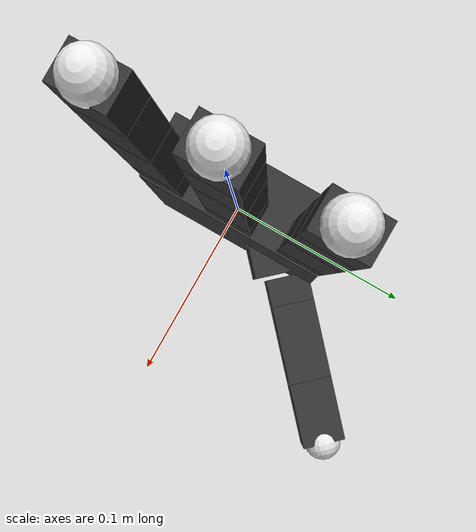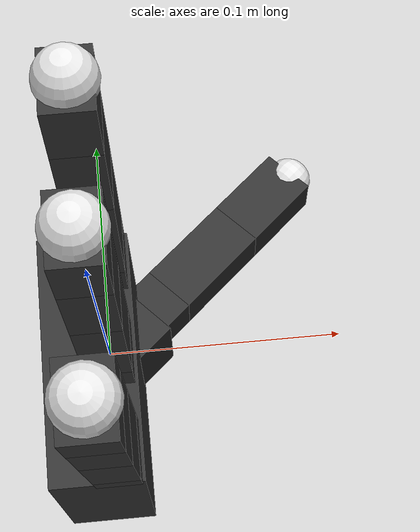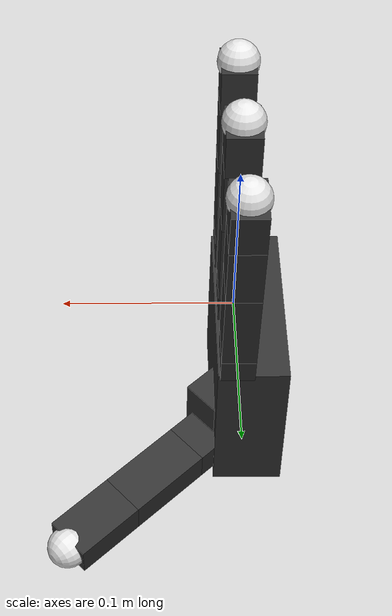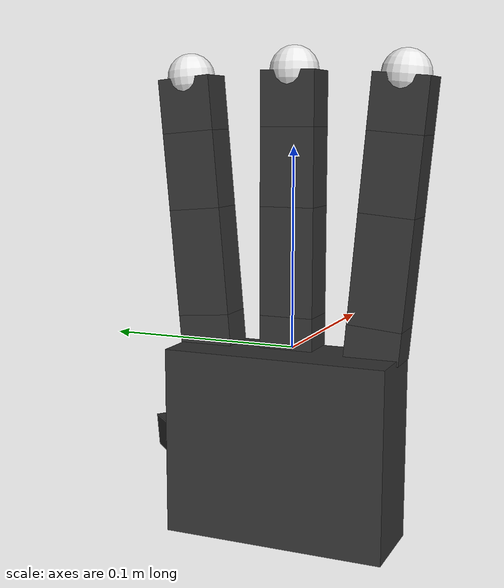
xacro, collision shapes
<?xml version="1.0"?>
<robot xmlns:xacro="http://ros.org/wiki/xacro" name="allegro_hand_right">

    <xacro:property name="DEG2RAD" value="0.01745329251"/>

    <!-- ======================== BASE PARAMS ========================= -->
    <xacro:property name="palm_link_z" value="0.095"/>

    <!-- ======================== FINGER PARAMS ======================== -->
    <xacro:property name="links_x" value="0.0196"/>
    <xacro:property name="links_y" value="0.0275"/>
    <xacro:property name="link0_z" value="0.0164"/>
    <xacro:property name="link1_z" value="0.0540"/>
    <xacro:property name="link2_z" value="0.0384"/>

    <!-- full height from joint to tip. when used,
         the radius of the finger tip sphere will be subtracted
         and one fixed link will be added for the tip. -->
    <xacro:property name="link3_z" value="0.0387"/>
    <xacro:property name="fingerTip_r" value="0.0120"/>
    <xacro:property name="offset_origin_x_const" value="0"/>
    <xacro:property name="offset_origin_y_const" value="0.0435"/>
    <xacro:property name="offset_origin_z_const" value="-0.001542"/>
    <xacro:property name="offset_origin_z_mid_const" value="0.0007"/>

    <!-- ========================= THUMB PARAMS ========================= -->
    <xacro:property name="link0_t_x" value="0.0358"/>
    <xacro:property name="link0_t_y" value="0.0340"/>
    <xacro:property name="link0_t_z" value="0.0455"/>
    <xacro:property name="link1_t_z" value="0.0177"/>
    <xacro:property name="link2_t_z" value="0.0514"/>
    <xacro:property name="link3_t_z" value="0.0543"/>

    <!-- ========================= LIMITS ========================= -->
    <xacro:property name="joint_safety_margin" value="0.1"/>
    <xacro:property name="limit_0_up" value="0.57"/>
    <xacro:property name="limit_0_low" value="-0.57"/>
    <xacro:property name="limit_1_up" value="1.71"/>
    <xacro:property name="limit_1_low" value="-0.296"/>
    <xacro:property name="limit_2_up" value="1.809"/>
    <xacro:property name="limit_2_low" value="-0.274"/>
    <xacro:property name="limit_3_up" value="1.718"/>
    <xacro:property name="limit_3_low" value=" -0.327"/>
    <xacro:property name="limit_0_t_up" value="1.496"/>
    <xacro:property name="limit_0_t_low" value="0.363"/>
    <xacro:property name="limit_1_t_up" value="1.263"/>
    <xacro:property name="limit_1_t_low" value="-0.205"/>
    <xacro:property name="limit_2_t_up" value="1.744"/>
    <xacro:property name="limit_2_t_low" value="-0.289"/>
    <xacro:property name="limit_3_t_up" value="1.819"/>
    <xacro:property name="limit_3_t_low" value="-0.262"/>

    <!-- PALM -->
    <link name="palm_link">
        <visual>
            <geometry>
                <mesh filename="package://allegro_hand_description1/meshes/base_link.STL"/>
            </geometry>
            <origin rpy="0 0 0" xyz="0 0 0 "/>
            <material name="black">
                <color rgba="0.2 0.2 0.2 1"/>
            </material>
        </visual>

        <collision>
            <origin rpy="0 0 0" xyz="-0.009300 0 -${palm_link_z/2}"/>
            <geometry>
                <box size="0.0408 0.1130 ${palm_link_z}"/>
            </geometry>
        </collision>
        <inertial>
          <origin xyz="0 0 ${palm_link_z/2}" rpy="0 0 0"/>
          <mass value="0.4154"/>
          <inertia
              ixx="1e-4" ixy="0.0" ixz="0.0"
              iyy="1e-4" iyz="0.0"
              izz="1e-4"/>
        </inertial>
    </link>

    <!-- THUMB MACRO -->
    <xacro:macro name="thumb_right"
                 params="finger_num offset_origin_x offset_origin_y offset_origin_z finger_angle_r finger_angle_p finger_angle_y">

        <!-- [LINK 12] -->
        <link name="link_${finger_num*4}_0">
            <visual>
                <geometry>
                    <mesh filename="package://allegro_hand_description1/meshes/link_12.0_right.STL"/>
                </geometry>
                <material name="black">
                    <color rgba=".2 .2 .2 1"/>
                </material>
            </visual>

            <collision>
                <geometry>
                    <box size="${link0_t_x} ${link0_t_y} ${link0_t_z}"/>
                </geometry>
                <origin rpy="0 0 0" xyz="${-0.0358/2+0.0} ${.018/2} ${.029/2}"/>
            </collision>

            <inertial>
              <mass value="0.0176" />
              <origin xyz="0 0 0" rpy="0 0 0"/>
              <inertia ixx="1.89273333333e-5" ixy="7.16716e-06" ixz="5.35568e-06"
                       iyy="1.43008213333e-05" iyz="6.8068e-06"
                       izz="1.89273333333e-05" />
            </inertial>
        </link>

        <joint name="joint_${finger_num*4}_0" type="revolute">
            <axis xyz="-1 0 0"/>
            <limit effort="15" velocity="7"
                   lower="${limit_0_t_low-joint_safety_margin}"
                   upper="${limit_0_t_up-joint_safety_margin}"/>
            <parent link="palm_link"/>
            <child link="link_${finger_num*4}_0"/>
            <origin rpy="${finger_angle_r} ${finger_angle_p} ${finger_angle_y}"
                    xyz="${offset_origin_x} ${offset_origin_y} ${offset_origin_z}"/>
            <dynamics damping="3" friction="10"/>
        </joint>
        <transmission name="tran1">
            <type>transmission_interface/SimpleTransmission</type>
            <joint name="joint_${finger_num*4}_0">
                <hardwareInterface>hardware_interface/PositionJointInterface</hardwareInterface>
            </joint>
            <actuator name="motor1">
                <hardwareInterface>hardware_interface/PositionJointInterface</hardwareInterface>
                <mechanicalReduction>1</mechanicalReduction>
            </actuator>
        </transmission>

        <!-- [LINK 13] -->
        <link name="link_${finger_num*4}_1">
            <visual>
                <geometry>
                    <mesh filename="package://allegro_hand_description1/meshes/link_13.0.STL"/>
                </geometry>
                <material name="black">
                    <color rgba=".2 .2 .2 1"/>
                </material>
            </visual>

            <collision>
                <geometry>
                    <box size="${links_x} ${links_y} ${link1_t_z}"/>
                </geometry>
                <origin rpy="0 0 0" xyz="0 0 ${link1_t_z/2}"/>
            </collision>

            <inertial>
              <mass value="0.0119" />
              <origin xyz="0 0 0" rpy="0 0 0"/>
              <inertia ixx="4.24250866667e-06" ixy="1.032087e-06" ixz="1.603525e-06"
                       iyy="4.52362633333e-06" iyz="1.44808125e-06"
                       izz="4.24250866667e-06" />
            </inertial>
        </link>

        <joint name="joint_${finger_num*4}_1" type="revolute">
            <axis xyz="0 0 1"/>
            <limit effort="15" velocity="7"
                   lower="${limit_1_t_low+joint_safety_margin}"
                   upper="${limit_1_t_up-joint_safety_margin}"/>
            <parent link="link_${finger_num*4}_0"/>
            <child link="link_${finger_num*4}_1"/>
            <origin xyz="-0.027 0.005 0.0399"/>
            <dynamics damping="3" friction="5"/>
        </joint>
        <transmission name="tran1">
            <type>transmission_interface/SimpleTransmission</type>
            <joint name="joint_${finger_num*4}_1">
                <hardwareInterface>hardware_interface/PositionJointInterface</hardwareInterface>
            </joint>
            <actuator name="motor1">
                <hardwareInterface>hardware_interface/PositionJointInterface</hardwareInterface>
                <mechanicalReduction>1</mechanicalReduction>
            </actuator>
        </transmission>

        <!-- [LINK 14] -->
        <link name="link_${finger_num*4}_2">
            <visual>
                <geometry>
                    <mesh filename="package://allegro_hand_description1/meshes/link_14.0.STL"/>
                </geometry>
                <material name="black">
                </material>
            </visual>

            <collision>
                <geometry>
                    <box size="${links_x} ${links_y} ${link2_t_z}"/>
                </geometry>
                <origin rpy="0 0 0" xyz="0 0 ${link2_t_z/2}"/>
            </collision>

            <inertial>
              <mass value="0.038" />
              <origin xyz="0 0 0" rpy="0 0 0"/>
              <inertia ixx="4.30439933333e-05" ixy="9.57068e-06" ixz="5.1205e-06" iyy="1.44451933333e-05"
                       iyz="1.342825e-05" izz="4.30439933333e-05" />
            </inertial>
        </link>

        <joint name="joint_${finger_num*4}_2" type="revolute">
            <axis xyz="0 1 0"/>
            <limit effort="15" velocity="7"
                   lower="${limit_2_t_low+joint_safety_margin}"
                   upper="${limit_2_t_up-joint_safety_margin}"/>
            <parent link="link_${finger_num*4}_1"/>
            <child link="link_${finger_num*4}_2"/>
            <origin xyz="0 0 ${link1_t_z}"/>
            <dynamics damping="3" friction="10"/>
        </joint>
        <transmission name="tran1">
            <type>transmission_interface/SimpleTransmission</type>
            <joint name="joint_${finger_num*4}_2">
                <hardwareInterface>hardware_interface/PositionJointInterface</hardwareInterface>
            </joint>
            <actuator name="motor1">
                <hardwareInterface>hardware_interface/PositionJointInterface</hardwareInterface>
                <mechanicalReduction>1</mechanicalReduction>
            </actuator>
        </transmission>

        <!-- [LINK 15] -->
        <link name="link_${finger_num*4}_3">
            <visual>
                <geometry>
                    <mesh filename="package://allegro_hand_description1/meshes/link_15.0.STL"/>
                </geometry>
                <material name="black">
                </material>
            </visual>

            <collision>
                <geometry>
                    <box size="${links_x} ${links_y} ${link3_t_z-fingerTip_r}"/>
                </geometry>
                <origin rpy="0 0 0" xyz="0 0 ${(link3_t_z-fingerTip_r)/2}"/>
            </collision>

            <inertial>
              <mass value="0.0388" />
              <origin xyz="0 0 0" rpy="0 0 0"/>
              <inertia ixx="3.29223173333e-05" ixy="8.042076e-06" ixz="5.2283e-06"
                       iyy="1.47493026667e-5" iyz="1.1283525e-5"
                       izz="3.29223173333e-05" />
            </inertial>
        </link>

        <joint name="joint_${finger_num*4}_3" type="revolute">
            <axis xyz="0 1 0"/>
            <limit effort="15" velocity="7"
                   lower="${limit_3_t_low+joint_safety_margin}"
                   upper="${limit_3_t_up-joint_safety_margin}"/>
            <parent link="link_${finger_num*4}_2"/>
            <child link="link_${finger_num*4}_3"/>
            <origin xyz="0 0 ${link2_t_z}"/>
            <dynamics damping="3" friction="12"/>
        </joint>
        <transmission name="tran1">
            <type>transmission_interface/SimpleTransmission</type>
            <joint name="joint_${finger_num*4}_3">
                <hardwareInterface>hardware_interface/PositionJointInterface</hardwareInterface>
            </joint>
            <actuator name="motor1">
                <hardwareInterface>hardware_interface/PositionJointInterface</hardwareInterface>
                <mechanicalReduction>1</mechanicalReduction>
            </actuator>
        </transmission>

        <!-- [FINGER TIP] -->
        <link name="link_${finger_num*4}_3_tip">
            <visual>
                <geometry>
                    <mesh filename="package://allegro_hand_description1/meshes/link_15.0_tip.STL"/>
                </geometry>
                <material name="white">
                    <color rgba=".9 .9 .9 1"/>
                </material>
            </visual>

            <collision>
                <geometry>
                    <sphere radius="${fingerTip_r}"/>
                </geometry>
                <origin rpy="0 0 0" xyz="0 0 0"/>
            </collision>

            <inertial>
              <mass value="0.0168" />
              <origin xyz="0 0 0" rpy="0 0 0"/>
              <inertia ixx="9.68e-07" ixy="0" ixz="0"
                       iyy="9.68e-07" iyz="0"
                       izz="9.68e-07" />
            </inertial>
        </link>

        <joint name="joint_${finger_num*4}_3_tip" type="fixed">
            <parent link="link_${finger_num*4}_3"/>
            <child link="link_${finger_num*4}_3_tip"/>
            <origin rpy="0 0 0" xyz="0 0 ${link3_t_z-fingerTip_r}"/>
        </joint>

    </xacro:macro>
    <!-- END THUMB MACRO -->

    <!-- THREE FINGER MACRO -->
    <xacro:macro name="finger"
                 params="finger_num offset_origin_x offset_origin_y offset_origin_z finger_angle_r">

        <!-- [LINK 0, 4, 8] -->
        <link name="link_${finger_num*4}_0">
            <visual>
                <geometry>
                    <mesh filename="package://allegro_hand_description1/meshes/link_0.0.STL"/>
                </geometry>
                <material name="black"/>
            </visual>

            <collision>
                <geometry>
                    <box size="${links_x} ${links_y} ${link0_z}"/>
                </geometry>
                <origin rpy="0 0 0" xyz="0 0 ${link0_z/2}"/>
            </collision>

            <inertial>
              <mass value="0.0119" />
              <origin xyz="0 0 0" rpy="0 0 0"/>
              <inertia ixx="1.01666658333e-06" ixy="0.0" ixz="0.0"
                       iyy="6.47677333333e-07" iyz="0.0"
                       izz="1.01666658333e-06" />
            </inertial>
        </link>

        <joint name="joint_${finger_num*4}_0" type="revolute">
            <axis xyz="0 0 1"/>
            <limit effort="15" velocity="7"
                   lower="${limit_0_low+joint_safety_margin}"
                   upper="${limit_0_up-joint_safety_margin}"/>
            <parent link="palm_link"/>
            <child link="link_${finger_num*4}_0"/>
            <origin rpy="${finger_angle_r} 0 0"
                    xyz="${offset_origin_x} ${offset_origin_y} ${offset_origin_z}"/>
            <dynamics damping="3" friction="10"/>
        </joint>
        <transmission name="tran1">
            <type>transmission_interface/SimpleTransmission</type>
            <joint name="joint_${finger_num*4}_0">
                <hardwareInterface>hardware_interface/PositionJointInterface</hardwareInterface>
            </joint>
            <actuator name="motor1">
                <hardwareInterface>hardware_interface/PositionJointInterface</hardwareInterface>
                <mechanicalReduction>1</mechanicalReduction>
            </actuator>
        </transmission>

        <!-- [LINK 1, 5, 9] -->
        <link name="link_${finger_num*4}_1">
            <visual>
                <geometry>
                    <mesh filename="package://allegro_hand_description1/meshes/link_1.0.STL"/>
                </geometry>
                <material name="black"/>
            </visual>

            <collision>
                <geometry>
                    <box size="${links_x} ${links_y} ${link1_z}"/>
                </geometry>
                <origin rpy="0 0 0" xyz="0 0 ${link1_z/2}"/>
            </collision>
            <inertial>
              <mass value="0.065" />
              <origin xyz="0 0 0" rpy="0 0 0"/>
              <inertia ixx="7.95654166667e-05" ixy="1.7199e-05" ixz="8.75875e-06"
                       iyy="2.47088833333e-05" iyz="2.413125e-05"
                       izz="7.95654166667e-05" />
            </inertial>
        </link>

        <joint name="joint_${finger_num*4}_1" type="revolute">
            <limit effort="15" velocity="7"
                   lower="${limit_1_low+joint_safety_margin}"
                   upper="${limit_1_up-joint_safety_margin}"/>
            <axis xyz="0 1 0"/>
            <parent link="link_${finger_num*4}_0"/>
            <child link="link_${finger_num*4}_1"/>
            <origin xyz="0 0 ${link0_z}"/>
            <dynamics damping="3" friction="5"/>
        </joint>
        <transmission name="tran1">
            <type>transmission_interface/SimpleTransmission</type>
            <joint name="joint_${finger_num*4}_1">
                <hardwareInterface>hardware_interface/PositionJointInterface</hardwareInterface>
            </joint>
            <actuator name="motor1">
                <hardwareInterface>hardware_interface/PositionJointInterface</hardwareInterface>
                <mechanicalReduction>1</mechanicalReduction>
            </actuator>
        </transmission>

        <!-- [LINK 2, 6, 10]-->
        <link name="link_${finger_num*4}_2">
            <visual>
                <geometry>
                    <mesh filename="package://allegro_hand_description1/meshes/link_2.0.STL"/>
                </geometry>
                <material name="black"/>
            </visual>

            <collision>
                <geometry>
                    <box size="${links_x} ${links_y} ${link2_z}"/>
                </geometry>
                <origin rpy="0 0 0" xyz="0 0 ${link2_z/2}"/>
            </collision>

            <inertial>
              <mass value="0.0355" />
              <origin xyz="0 0 0" rpy="0 0 0"/>
              <inertia ixx="2.63979183333e-05" ixy="6.67968e-06" ixz="4.783625e-06"
                       iyy="1.34948516667e-05" iyz="9.372e-06"
                       izz="2.63979183333e-05" />
            </inertial>
        </link>

        <joint name="joint_${finger_num*4}_2" type="revolute">
            <axis xyz="0 1 0"/>
            <limit effort="15" velocity="7"
                   lower="${limit_2_low+joint_safety_margin}"
                   upper="${limit_2_up-joint_safety_margin}"/>
            <parent link="link_${finger_num*4}_1"/>
            <child link="link_${finger_num*4}_2"/>
            <origin xyz="0 0 ${link1_z}"/>
            <dynamics damping="8" friction="10"/>
        </joint>
        <transmission name="tran1">
            <type>transmission_interface/SimpleTransmission</type>
            <joint name="joint_${finger_num*4}_2">
                <hardwareInterface>hardware_interface/PositionJointInterface</hardwareInterface>
            </joint>
            <actuator name="motor1">
                <hardwareInterface>hardware_interface/PositionJointInterface</hardwareInterface>
                <mechanicalReduction>1</mechanicalReduction>
            </actuator>
        </transmission>

        <!-- [LINK 3, 7, 11] -->
        <link name="link_${finger_num*4}_3">
            <visual>
                <geometry>
                    <mesh filename="package://allegro_hand_description1/meshes/link_3.0.STL"/>
                </geometry>
                <material name="black"/>
            </visual>

            <collision>
                <geometry>
                    <box size="${links_x} ${links_y} ${link3_z-fingerTip_r}"/>
                </geometry>
                <origin rpy="0 0 0" xyz="0 0 ${(link3_z-fingerTip_r)/2}"/>
            </collision>

            <inertial>
              <mass value="0.0096" />
              <origin xyz="0 0 0" rpy="0 0 0"/>
              <inertia ixx="4.701248e-06" ixy="1.255968e-06" ixz="1.2936e-06"
                       iyy="3.649312e-06" iyz="1.7622e-06"
                       izz="4.701248e-06" />
            </inertial>
        </link>

        <joint name="joint_${finger_num*4}_3" type="revolute">
            <axis xyz="0 1 0"/>
            <limit effort="15" velocity="7"
                   lower="${limit_3_low+joint_safety_margin}"
                   upper="${limit_3_up-joint_safety_margin}"/>
            <parent link="link_${finger_num*4}_2"/>
            <child link="link_${finger_num*4}_3"/>
            <origin xyz="0 0 ${link2_z}"/>
            <dynamics damping="10" friction="12"/>
        </joint>
        <transmission name="tran1">
            <type>transmission_interface/SimpleTransmission</type>
            <joint name="joint_${finger_num*4}_3">
                <hardwareInterface>hardware_interface/PositionJointInterface</hardwareInterface>
            </joint>
            <actuator name="motor1">
                <hardwareInterface>hardware_interface/PositionJointInterface</hardwareInterface>
                <mechanicalReduction>1</mechanicalReduction>
            </actuator>
        </transmission>
        <!-- [FINGER TIP] -->
        <link name="link_${finger_num*4}_3_tip">
            <visual>
                <geometry>
                    <mesh filename="package://allegro_hand_description1/meshes/link_3.0_tip.STL"/>
                </geometry>
                <material name="white">
                    <color rgba=".9 .9 .9 1"/>
                </material>
            </visual>

            <collision>
                <geometry>
                    <sphere radius="${fingerTip_r}"/>
                </geometry>
            </collision>

            <inertial>
              <mass value="0.0168" />
              <origin xyz="0 0 0" rpy="0 0 0"/>
              <inertia ixx="9.68e-07" ixy="0" ixz="0"
                       iyy="9.68e-07" iyz="0"
                       izz="9.68e-07" />
            </inertial>
        </link>

        <joint name="joint_${finger_num*4}_3_tip" type="fixed">
            <parent link="link_${finger_num*4}_3"/>
            <child link="link_${finger_num*4}_3_tip"/>
            <origin rpy="0 0 0" xyz="0 0 ${link3_z-fingerTip_r}"/>
        </joint>
    </xacro:macro>
    <!-- [[END]] THREE FINGER MACRO -->

    <!-- FINGERS -->
    <!-- RIGHT HAND due to which finger is number 0 -->
    <!-- for LEFT HAND switch the sign of the **offset_origin_y** and **finger_angle_r** parameters-->
    <xacro:finger
            finger_num="0"
            offset_origin_x="${offset_origin_x_const}"
            offset_origin_y="${offset_origin_y_const}"
            offset_origin_z="${offset_origin_z_const}"
            finger_angle_r="-${5.0*DEG2RAD}"
            />
    <xacro:finger
            finger_num="1"
            offset_origin_x="${offset_origin_x_const}"
            offset_origin_y="0"
            offset_origin_z="${offset_origin_z_mid_const}"
            finger_angle_r="0.0"
            />
    <xacro:finger
            finger_num="2"
            offset_origin_x="${offset_origin_x_const}"
            offset_origin_y="-${offset_origin_y_const}"
            offset_origin_z="${offset_origin_z_const}"
            finger_angle_r="${5.0*DEG2RAD}"
            />
    <!-- THUMB -->
    <xacro:thumb_right
            finger_num="3"
            offset_origin_x="-0.0182"
            offset_origin_y="0.019333"
            offset_origin_z="-0.045987"
            finger_angle_r="0"
            finger_angle_p="-${95*DEG2RAD}"
            finger_angle_y="-${90*DEG2RAD}"
            />

</robot>
